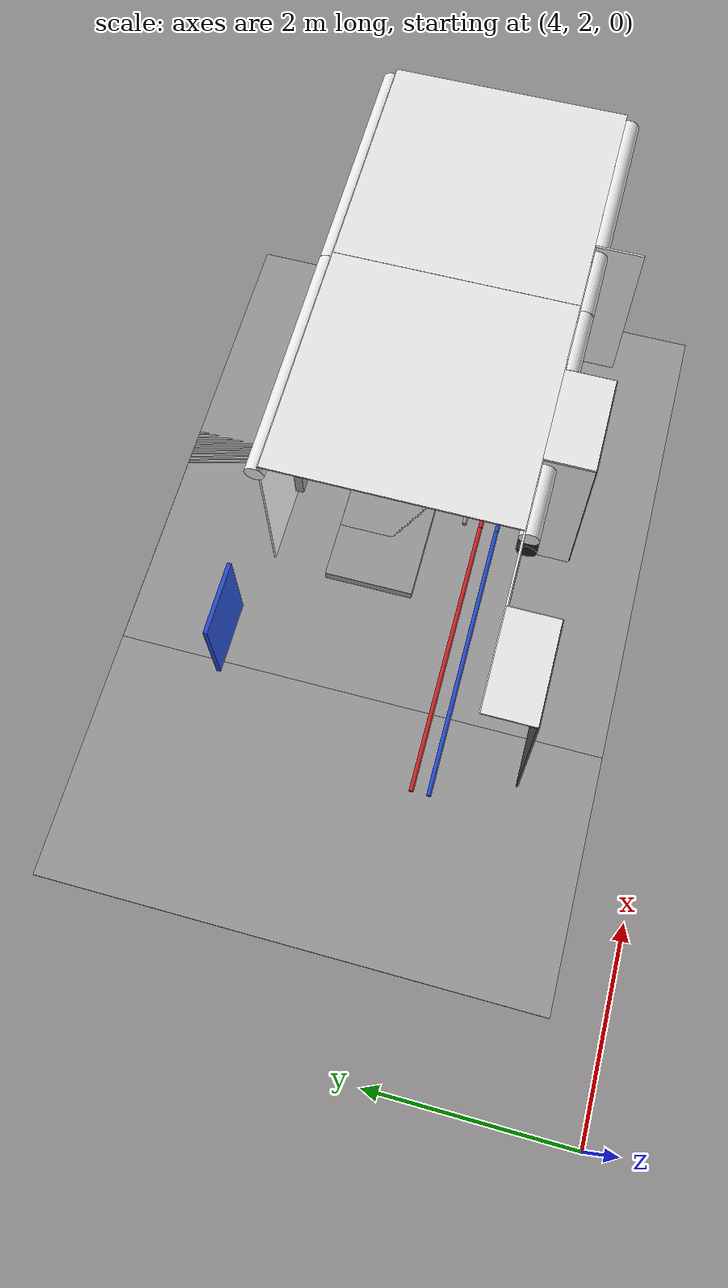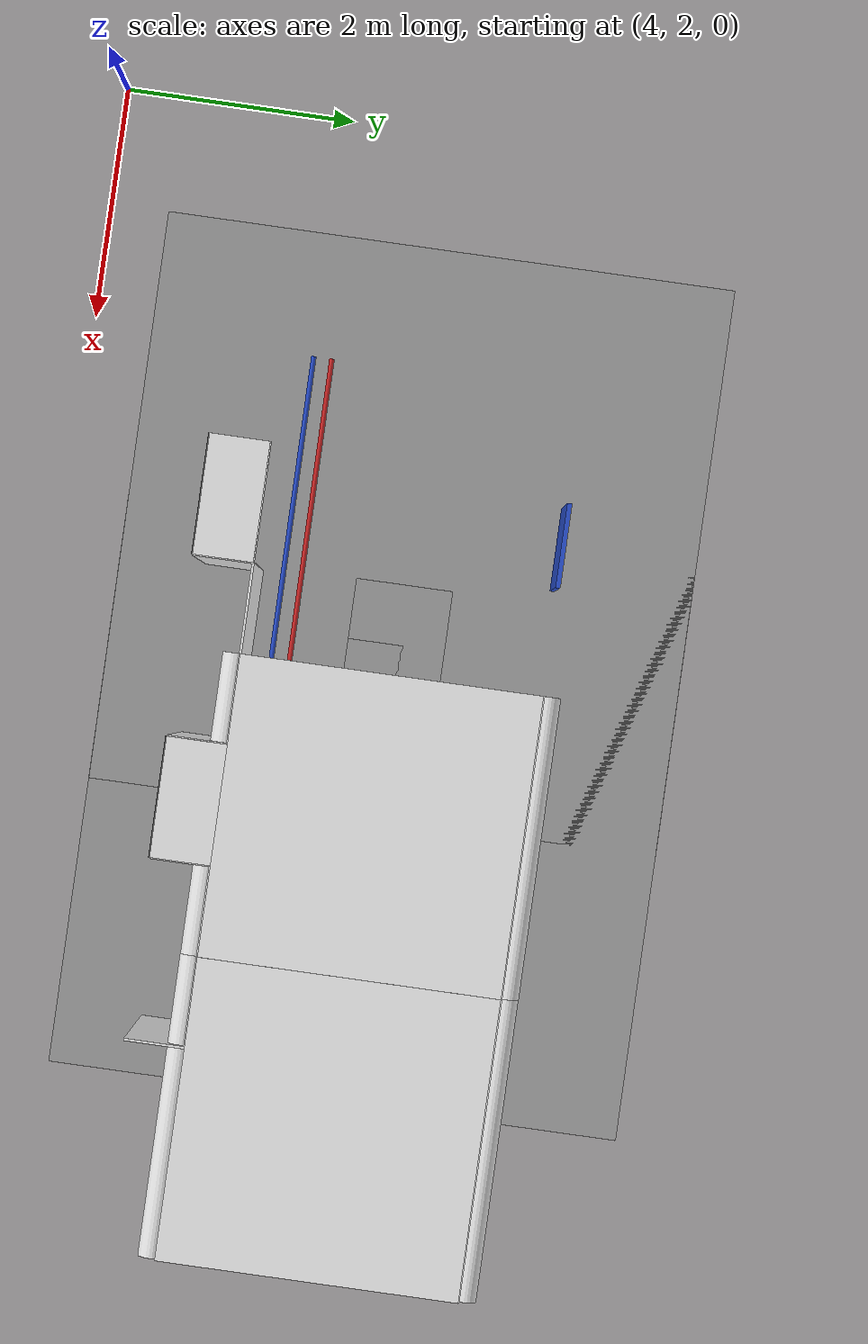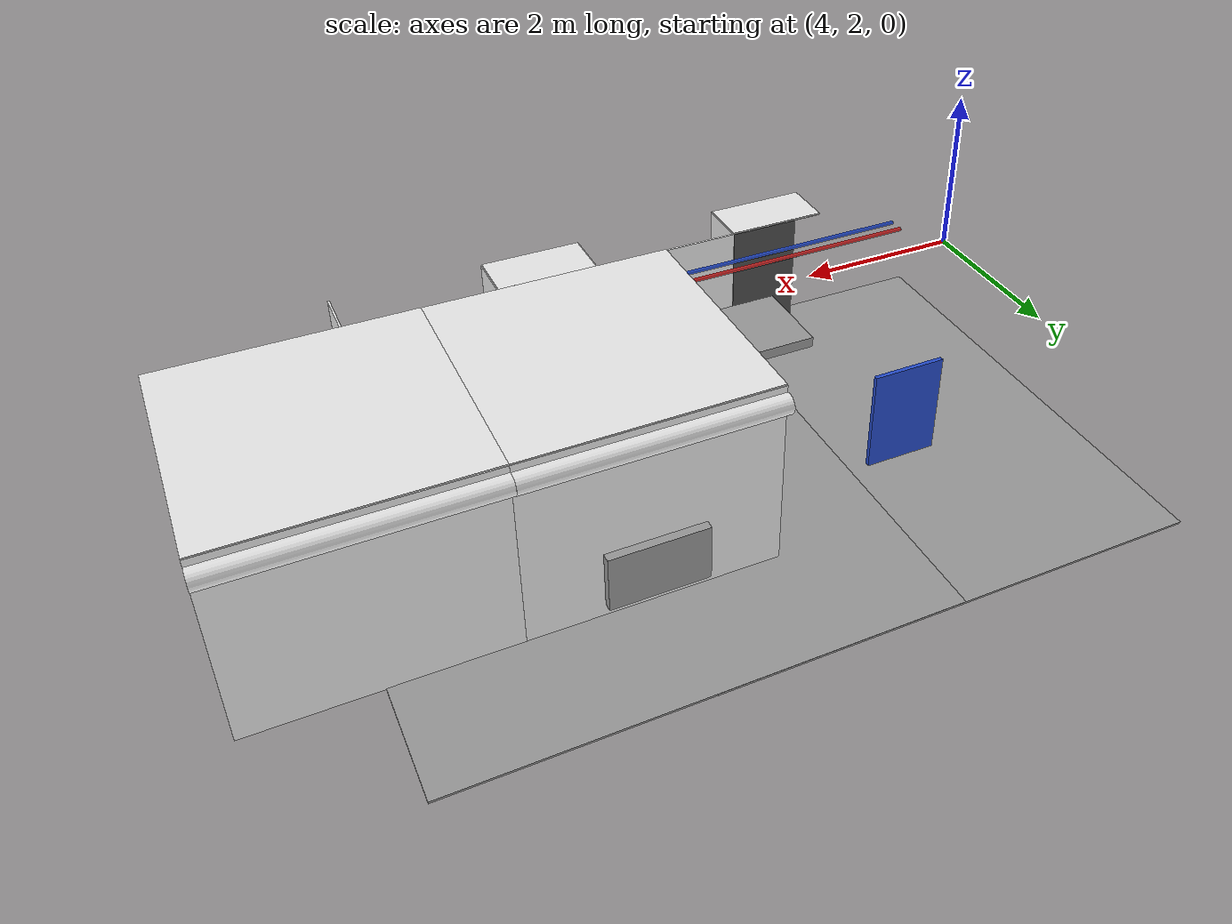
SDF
<sdf version="1.6">
 <world name="default">
  <model name="ceiling_1_3_2_2_1">
   <pose>8.5 5.0 1.7 0.0 0.0 -1.57</pose>
   <link name="link_1">
    <visual name="visual">
     <geometry><box><size>0.8 1 0.1</size></box></geometry>
     <material>
      <script><uri>file://media/materials/scripts/gazebo.material</uri><name>Gazebo/Grey</name></script>
     </material>
    </visual>
    <collision name="collision"><geometry><box><size>0.8 1 0.1</size></box></geometry></collision>
   </link>
   <static>1</static>
  </model>
  <model name="red_pipe_right_3_2_0_1">
   <static>1</static>
   <pose>7.5 5.0 1.84 0.0 0.0 -1.57</pose>
   <link name="link_0">
    <visual name="visual">
     <pose>0.85 0 0 1.57 0 0</pose>
     <geometry><cylinder><radius>0.02</radius><length>2.5</length></cylinder></geometry>
     <material>
      <script><uri>file://media/materials/scripts/gazebo.material</uri><name>Gazebo/Red</name></script>
     </material>
    </visual>
    <collision name="collision">
     <pose>0.85 0 0 1.57 0 0</pose>
     <geometry><cylinder><radius>0.02</radius><length>2.5</length></cylinder></geometry>
    </collision>
   </link>
  </model>
  <model name="blue_pipe_right_3_2_0_1">
   <static>1</static>
   <pose>7.5 5.0 1.84 0.0 0.0 -1.57</pose>
   <link name="link_0">
    <visual name="visual">
     <pose>1 0 0 1.57 0 0</pose>
     <geometry><cylinder><radius>0.02</radius><length>2.5</length></cylinder></geometry>
     <material>
      <script><uri>file://media/materials/scripts/gazebo.material</uri><name>Gazebo/Blue</name></script>
     </material>
    </visual>
    <collision name="collision">
     <pose>1 0 0 1.57 0 0</pose>
     <geometry><cylinder><radius>0.02</radius><length>2.5</length></cylinder></geometry>
    </collision>
   </link>
  </model>
  <model name="panel_3_2_0_1">
   <static>1</static>
   <pose>7.5 6.25 1.3 0.0 0.0 -1.57</pose>
   <link name="link">
    <collision name="collision"><geometry><box><size>0.04 0.7 1</size></box></geometry></collision>
    <visual name="visual">
     <material>
      <script><name>Gazebo/Blue</name><uri>file://media/materials/scripts/gazebo.material</uri></script>
     </material>
     <geometry><box><size>0.04 0.7 1</size></box></geometry>
    </visual>
   </link>
  </model>
  <model name="wall_right_front_left_3_2_0_1">
   <static>1</static>
   <pose>8.375 3.75 1.0 0.0 0.0 0.0</pose>
   <link name="link">
    <collision name="collision"><geometry><box><size>0.75 0.02 2.0</size></box></geometry></collision>
    <visual name="visual">
     <material>
      <script><name>Gazebo/White</name><uri>file://media/materials/scripts/gazebo.material</uri></script>
     </material>
     <geometry><box><size>0.75 0.02 2.0</size></box></geometry>
    </visual>
   </link>
  </model>
  <model name="wall_right_front_up_3_2_0_1">
   <static>1</static>
   <pose>7.5 3.75 2.0 0.0 0.0 0.0</pose>
   <link name="link">
    <collision name="collision"><geometry><box><size>1.0 0.02 0.001</size></box></geometry></collision>
    <visual name="visual">
     <material>
      <script><name>Gazebo/White</name><uri>file://media/materials/scripts/gazebo.material</uri></script>
     </material>
     <geometry><box><size>1.0 0.02 0.001</size></box></geometry>
    </visual>
   </link>
  </model>
  <model name="wall_right_inside_back_3_2_0_1">
   <static>1</static>
   <pose>7.5 3.25 1.0 0.0 0.0 0.0</pose>
   <link name="link">
    <collision name="collision"><geometry><box><size>1 0.02 2</size></box></geometry></collision>
    <visual name="visual">
     <material>
      <script><name>Gazebo/DarkGrey</name><uri>file://media/materials/scripts/gazebo.material</uri></script>
     </material>
     <geometry><box><size>1 0.02 2</size></box></geometry>
    </visual>
   </link>
  </model>
  <model name="wall_right_inside_left_3_2_0_1">
   <static>1</static>
   <pose>8.0 3.5 1.0 0.0 0.0 -1.57</pose>
   <link name="link">
    <collision name="collision"><geometry><box><size>0.5 0.02 2</size></box></geometry></collision>
    <visual name="visual">
     <material>
      <script><name>Gazebo/White</name><uri>file://media/materials/scripts/gazebo.material</uri></script>
     </material>
     <geometry><box><size>0.5 0.02 2</size></box></geometry>
    </visual>
   </link>
  </model>
  <model name="wall_right_inside_top_3_2_0_1">
   <static>1</static>
   <pose>7.5 3.5 2.0 1.57 0.0 0.0</pose>
   <link name="link">
    <collision name="collision"><geometry><box><size>1 0.02 0.5</size></box></geometry></collision>
    <visual name="visual">
     <material>
      <script><name>Gazebo/White</name><uri>file://media/materials/scripts/gazebo.material</uri></script>
     </material>
     <geometry><box><size>1 0.02 0.5</size></box></geometry>
    </visual>
   </link>
  </model>
  <model name="wall_bottom_3_2_0_1">
   <static>1</static>
   <pose>7.5 5.0 0.0 0.0 0.0 -1.57</pose>
   <link name="link">
    <collision name="collision"><geometry><box><size>5.0 5.0 0.02</size></box></geometry></collision>
    <visual name="visual">
     <material>
      <script><name>Gazebo/Grey</name><uri>file://media/materials/scripts/gazebo.material</uri></script>
     </material>
     <geometry><box><size>5.0 5.0 0.02</size></box></geometry>
    </visual>
   </link>
  </model>
  <model name="wall_left_4_2_0_1">
   <static>1</static>
   <pose>10.0 6.25 1.0 0.0 0.0 0.0</pose>
   <link name="link">
    <collision name="collision"><geometry><box><size>2.5 0.02 2.0</size></box></geometry></collision>
    <visual name="visual">
     <material>
      <script><name>Gazebo/White</name><uri>file://media/materials/scripts/gazebo.material</uri></script>
     </material>
     <geometry><box><size>2.5 0.02 2.0</size></box></geometry>
    </visual>
   </link>
  </model>
  <model name="wall_top_4_2_0_1">
   <static>1</static>
   <pose>10.0 5.0 2.0 1.57 0.0 -1.57</pose>
   <link name="link">
    <collision name="collision"><geometry><box><size>2.5 0.02 2.5</size></box></geometry></collision>
    <visual name="visual">
     <material>
      <script><name>Gazebo/White</name><uri>file://media/materials/scripts/gazebo.material</uri></script>
     </material>
     <geometry><box><size>2.5 0.02 2.5</size></box></geometry>
    </visual>
   </link>
  </model>
  <model name="ceiling_1_4_2_0_1">
   <pose>10.0 5.0 1.7 0.0 0.0 -1.57</pose>
   <link name="link_1">
    <visual name="visual">
     <geometry><box><size>0.8 1 0.1</size></box></geometry>
     <material>
      <script><uri>file://media/materials/scripts/gazebo.material</uri><name>Gazebo/Grey</name></script>
     </material>
    </visual>
    <collision name="collision"><geometry><box><size>0.8 1 0.1</size></box></geometry></collision>
   </link>
   <static>1</static>
  </model>
  <model name="ceiling_1_4_2_1_1">
   <pose>9.0 5.0 1.7 0.0 0.0 -1.57</pose>
   <link name="link_1">
    <visual name="visual">
     <geometry><box><size>0.8 1 0.1</size></box></geometry>
     <material>
      <script><uri>file://media/materials/scripts/gazebo.material</uri><name>Gazebo/Grey</name></script>
     </material>
    </visual>
    <collision name="collision"><geometry><box><size>0.8 1 0.1</size></box></geometry></collision>
   </link>
   <static>1</static>
  </model>
  <model name="ceiling_1_4_2_2_1">
   <pose>11.0 5.0 1.7 0.0 0.0 -1.57</pose>
   <link name="link_1">
    <visual name="visual">
     <geometry><box><size>0.8 1 0.1</size></box></geometry>
     <material>
      <script><uri>file://media/materials/scripts/gazebo.material</uri><name>Gazebo/Grey</name></script>
     </material>
    </visual>
    <collision name="collision"><geometry><box><size>0.8 1 0.1</size></box></geometry></collision>
   </link>
   <static>1</static>
  </model>
  <model name="white_pipe_left_4_2_0_1">
   <static>1</static>
   <pose>10.0 5.0 1.84 0.0 0.0 -1.57</pose>
   <link name="link_0">
    <visual name="visual">
     <pose>-1.3 0 0 1.57 0 0</pose>
     <geometry><cylinder><radius>0.1</radius><length>2.5</length></cylinder></geometry>
     <material>
      <script><uri>file://media/materials/scripts/gazebo.material</uri><name>Gazebo/White</name></script>
     </material>
    </visual>
    <collision name="collision">
     <pose>-1.3 0 0 1.57 0 0</pose>
     <geometry><cylinder><radius>0.1</radius><length>2.5</length></cylinder></geometry>
    </collision>
   </link>
  </model>
  <model name="white_pipe_right_4_2_0_1">
   <static>1</static>
   <pose>10.0 5.0 1.84 0.0 0.0 -1.57</pose>
   <link name="link_0">
    <visual name="visual">
     <pose>1.3 0 0 1.57 0 0</pose>
     <geometry><cylinder><radius>0.1</radius><length>2.5</length></cylinder></geometry>
     <material>
      <script><uri>file://media/materials/scripts/gazebo.material</uri><name>Gazebo/White</name></script>
     </material>
    </visual>
    <collision name="collision">
     <pose>1.3 0 0 1.57 0 0</pose>
     <geometry><cylinder><radius>0.1</radius><length>2.5</length></cylinder></geometry>
    </collision>
   </link>
  </model>
  <model name="black_pipe_right_4_2_0_1">
   <static>1</static>
   <pose>10.0 5.0 1.84 0.0 0.0 -1.57</pose>
   <link name="link_0">
    <visual name="visual">
     <pose>1.3 0 -0.25 1.57 0 0</pose>
     <geometry><cylinder><radius>0.1</radius><length>2.5</length></cylinder></geometry>
     <material>
      <script><uri>file://media/materials/scripts/gazebo.material</uri><name>Gazebo/Black</name></script>
     </material>
    </visual>
    <collision name="collision">
     <pose>1.3 0 -0.25 1.57 0 0</pose>
     <geometry><cylinder><radius>0.1</radius><length>2.5</length></cylinder></geometry>
    </collision>
   </link>
  </model>
  <model name="grey_pipe_right_4_2_0_1">
   <static>1</static>
   <pose>10.0 5.0 1.84 0.0 0.0 -1.57</pose>
   <link name="link_0">
    <visual name="visual">
     <pose>0.7 0 0 1.57 0 0</pose>
     <geometry><cylinder><radius>0.02</radius><length>2.5</length></cylinder></geometry>
     <material>
      <script><uri>file://media/materials/scripts/gazebo.material</uri><name>Gazebo/Grey</name></script>
     </material>
    </visual>
    <collision name="collision">
     <pose>0.7 0 0 1.57 0 0</pose>
     <geometry><cylinder><radius>0.02</radius><length>2.5</length></cylinder></geometry>
    </collision>
   </link>
  </model>
  <model name="red_pipe_right_4_2_0_1">
   <static>1</static>
   <pose>10.0 5.0 1.84 0.0 0.0 -1.57</pose>
   <link name="link_0">
    <visual name="visual">
     <pose>0.85 0 0 1.57 0 0</pose>
     <geometry><cylinder><radius>0.02</radius><length>2.5</length></cylinder></geometry>
     <material>
      <script><uri>file://media/materials/scripts/gazebo.material</uri><name>Gazebo/Red</name></script>
     </material>
    </visual>
    <collision name="collision">
     <pose>0.85 0 0 1.57 0 0</pose>
     <geometry><cylinder><radius>0.02</radius><length>2.5</length></cylinder></geometry>
    </collision>
   </link>
  </model>
  <model name="blue_pipe_right_4_2_0_1">
   <static>1</static>
   <pose>10.0 5.0 1.84 0.0 0.0 -1.57</pose>
   <link name="link_0">
    <visual name="visual">
     <pose>1 0 0 1.57 0 0</pose>
     <geometry><cylinder><radius>0.02</radius><length>2.5</length></cylinder></geometry>
     <material>
      <script><uri>file://media/materials/scripts/gazebo.material</uri><name>Gazebo/Blue</name></script>
     </material>
    </visual>
    <collision name="collision">
     <pose>1 0 0 1.57 0 0</pose>
     <geometry><cylinder><radius>0.02</radius><length>2.5</length></cylinder></geometry>
    </collision>
   </link>
  </model>
  <model name="wall_bottom_4_2_0_1">
   <static>1</static>
   <pose>10.0 5.0 0.0 0.0 0.0 -1.57</pose>
   <link name="link">
    <collision name="collision"><geometry><box><size>5.0 5.0 0.02</size></box></geometry></collision>
    <visual name="visual">
     <material>
      <script><name>Gazebo/Grey</name><uri>file://media/materials/scripts/gazebo.material</uri></script>
     </material>
     <geometry><box><size>5.0 5.0 0.02</size></box></geometry>
    </visual>
   </link>
  </model>
  <model name="wall_right_front_left_4_2_0_1">
   <static>1</static>
   <pose>10.875 3.75 1.0 0.0 0.0 0.0</pose>
   <link name="link">
    <collision name="collision"><geometry><box><size>0.75 0.02 2.0</size></box></geometry></collision>
    <visual name="visual">
     <material>
      <script><name>Gazebo/White</name><uri>file://media/materials/scripts/gazebo.material</uri></script>
     </material>
     <geometry><box><size>0.75 0.02 2.0</size></box></geometry>
    </visual>
   </link>
  </model>
  <model name="wall_right_front_right_4_2_0_1">
   <static>1</static>
   <pose>9.125 3.75 1.0 0.0 0.0 0.0</pose>
   <link name="link">
    <collision name="collision"><geometry><box><size>0.75 0.02 2.0</size></box></geometry></collision>
    <visual name="visual">
     <material>
      <script><name>Gazebo/White</name><uri>file://media/materials/scripts/gazebo.material</uri></script>
     </material>
     <geometry><box><size>0.75 0.02 2.0</size></box></geometry>
    </visual>
   </link>
  </model>
  <model name="wall_right_front_up_4_2_0_1">
   <static>1</static>
   <pose>10.0 3.75 2.0 0.0 0.0 0.0</pose>
   <link name="link">
    <collision name="collision"><geometry><box><size>1.0 0.02 0.001</size></box></geometry></collision>
    <visual name="visual">
     <material>
      <script><name>Gazebo/White</name><uri>file://media/materials/scripts/gazebo.material</uri></script>
     </material>
     <geometry><box><size>1.0 0.02 0.001</size></box></geometry>
    </visual>
   </link>
  </model>
  <model name="wall_right_inside_back_4_2_0_1">
   <static>1</static>
   <pose>10.0 3.25 1.0 0.0 0.0 0.0</pose>
   <link name="link">
    <collision name="collision"><geometry><box><size>1 0.02 2</size></box></geometry></collision>
    <visual name="visual">
     <material>
      <script><name>Gazebo/DarkGrey</name><uri>file://media/materials/scripts/gazebo.material</uri></script>
     </material>
     <geometry><box><size>1 0.02 2</size></box></geometry>
    </visual>
   </link>
  </model>
  <model name="wall_right_inside_left_4_2_0_1">
   <static>1</static>
   <pose>10.5 3.5 1.0 0.0 0.0 -1.57</pose>
   <link name="link">
    <collision name="collision"><geometry><box><size>0.5 0.02 2</size></box></geometry></collision>
    <visual name="visual">
     <material>
      <script><name>Gazebo/White</name><uri>file://media/materials/scripts/gazebo.material</uri></script>
     </material>
     <geometry><box><size>0.5 0.02 2</size></box></geometry>
    </visual>
   </link>
  </model>
  <model name="wall_right_inside_right_4_2_0_1">
   <static>1</static>
   <pose>9.5 3.5 1.0 0.0 0.0 -1.57</pose>
   <link name="link">
    <collision name="collision"><geometry><box><size>0.5 0.02 2</size></box></geometry></collision>
    <visual name="visual">
     <material>
      <script><name>Gazebo/White</name><uri>file://media/materials/scripts/gazebo.material</uri></script>
     </material>
     <geometry><box><size>0.5 0.02 2</size></box></geometry>
    </visual>
   </link>
  </model>
  <model name="wall_right_inside_top_4_2_0_1">
   <static>1</static>
   <pose>10.0 3.5 2.0 1.57 0.0 0.0</pose>
   <link name="link">
    <collision name="collision"><geometry><box><size>1 0.02 0.5</size></box></geometry></collision>
    <visual name="visual">
     <material>
      <script><name>Gazebo/White</name><uri>file://media/materials/scripts/gazebo.material</uri></script>
     </material>
     <geometry><box><size>1 0.02 0.5</size></box></geometry>
    </visual>
   </link>
  </model>
  <model name="panel_4_2_0_1">
   <static>1</static>
   <pose>10.0 6.25 0.44 0.0 0.0 -1.57</pose>
   <link name="link">
    <collision name="collision"><geometry><box><size>0.2 1 0.6</size></box></geometry></collision>
    <visual name="visual">
     <material>
      <script><name>Gazebo/Grey</name><uri>file://media/materials/scripts/gazebo.material</uri></script>
     </material>
     <geometry><box><size>0.2 1 0.6</size></box></geometry>
    </visual>
   </link>
  </model>
  <model name="wall_left_5_2_0_1">
   <static>1</static>
   <pose>12.5 6.25 1.0 0.0 0.0 0.0</pose>
   <link name="link">
    <collision name="collision"><geometry><box><size>2.5 0.02 2.0</size></box></geometry></collision>
    <visual name="visual">
     <material>
      <script><name>Gazebo/White</name><uri>file://media/materials/scripts/gazebo.material</uri></script>
     </material>
     <geometry><box><size>2.5 0.02 2.0</size></box></geometry>
    </visual>
   </link>
  </model>
  <model name="wall_top_5_2_0_1">
   <static>1</static>
   <pose>12.5 5.0 2.0 1.57 0.0 -1.57</pose>
   <link name="link">
    <collision name="collision"><geometry><box><size>2.5 0.02 2.5</size></box></geometry></collision>
    <visual name="visual">
     <material>
      <script><name>Gazebo/White</name><uri>file://media/materials/scripts/gazebo.material</uri></script>
     </material>
     <geometry><box><size>2.5 0.02 2.5</size></box></geometry>
    </visual>
   </link>
  </model>
  <model name="ceiling_1_5_2_0_1">
   <pose>12.5 5.0 1.7 0.0 0.0 -1.57</pose>
   <link name="link_1">
    <visual name="visual">
     <geometry><box><size>0.8 1 0.1</size></box></geometry>
     <material>
      <script><uri>file://media/materials/scripts/gazebo.material</uri><name>Gazebo/Grey</name></script>
     </material>
    </visual>
    <collision name="collision"><geometry><box><size>0.8 1 0.1</size></box></geometry></collision>
   </link>
   <static>1</static>
  </model>
  <model name="ceiling_1_5_2_1_1">
   <pose>11.5 5.0 1.7 0.0 0.0 -1.57</pose>
   <link name="link_1">
    <visual name="visual">
     <geometry><box><size>0.8 1 0.1</size></box></geometry>
     <material>
      <script><uri>file://media/materials/scripts/gazebo.material</uri><name>Gazebo/Grey</name></script>
     </material>
    </visual>
    <collision name="collision"><geometry><box><size>0.8 1 0.1</size></box></geometry></collision>
   </link>
   <static>1</static>
  </model>
  <model name="white_pipe_left_5_2_0_1">
   <static>1</static>
   <pose>12.5 5.0 1.84 0.0 0.0 -1.57</pose>
   <link name="link_0">
    <visual name="visual">
     <pose>-1.3 0 0 1.57 0 0</pose>
     <geometry><cylinder><radius>0.1</radius><length>2.5</length></cylinder></geometry>
     <material>
      <script><uri>file://media/materials/scripts/gazebo.material</uri><name>Gazebo/White</name></script>
     </material>
    </visual>
    <collision name="collision">
     <pose>-1.3 0 0 1.57 0 0</pose>
     <geometry><cylinder><radius>0.1</radius><length>2.5</length></cylinder></geometry>
    </collision>
   </link>
  </model>
  <model name="white_pipe_right_5_2_0_1">
   <static>1</static>
   <pose>12.5 5.0 1.84 0.0 0.0 -1.57</pose>
   <link name="link_0">
    <visual name="visual">
     <pose>1.3 0 0 1.57 0 0</pose>
     <geometry><cylinder><radius>0.1</radius><length>2.5</length></cylinder></geometry>
     <material>
      <script><uri>file://media/materials/scripts/gazebo.material</uri><name>Gazebo/White</name></script>
     </material>
    </visual>
    <collision name="collision">
     <pose>1.3 0 0 1.57 0 0</pose>
     <geometry><cylinder><radius>0.1</radius><length>2.5</length></cylinder></geometry>
    </collision>
   </link>
  </model>
  <model name="black_pipe_right_5_2_0_1">
   <static>1</static>
   <pose>12.5 5.0 1.84 0.0 0.0 -1.57</pose>
   <link name="link_0">
    <visual name="visual">
     <pose>1.3 0 -0.25 1.57 0 0</pose>
     <geometry><cylinder><radius>0.1</radius><length>2.5</length></cylinder></geometry>
     <material>
      <script><uri>file://media/materials/scripts/gazebo.material</uri><name>Gazebo/Black</name></script>
     </material>
    </visual>
    <collision name="collision">
     <pose>1.3 0 -0.25 1.57 0 0</pose>
     <geometry><cylinder><radius>0.1</radius><length>2.5</length></cylinder></geometry>
    </collision>
   </link>
  </model>
  <model name="grey_pipe_right_5_2_0_1">
   <static>1</static>
   <pose>12.5 5.0 1.84 0.0 0.0 -1.57</pose>
   <link name="link_0">
    <visual name="visual">
     <pose>0.7 0 0 1.57 0 0</pose>
     <geometry><cylinder><radius>0.02</radius><length>2.5</length></cylinder></geometry>
     <material>
      <script><uri>file://media/materials/scripts/gazebo.material</uri><name>Gazebo/Grey</name></script>
     </material>
    </visual>
    <collision name="collision">
     <pose>0.7 0 0 1.57 0 0</pose>
     <geometry><cylinder><radius>0.02</radius><length>2.5</length></cylinder></geometry>
    </collision>
   </link>
  </model>
  <model name="red_pipe_right_5_2_0_1">
   <static>1</static>
   <pose>12.5 5.0 1.84 0.0 0.0 -1.57</pose>
   <link name="link_0">
    <visual name="visual">
     <pose>0.85 0 0 1.57 0 0</pose>
     <geometry><cylinder><radius>0.02</radius><length>2.5</length></cylinder></geometry>
     <material>
      <script><uri>file://media/materials/scripts/gazebo.material</uri><name>Gazebo/Red</name></script>
     </material>
    </visual>
    <collision name="collision">
     <pose>0.85 0 0 1.57 0 0</pose>
     <geometry><cylinder><radius>0.02</radius><length>2.5</length></cylinder></geometry>
    </collision>
   </link>
  </model>
  <model name="wall_right_front_right_5_2_0_1">
   <static>1</static>
   <pose>11.625 3.75 1.0 0.0 0.0 0.0</pose>
   <link name="link">
    <collision name="collision"><geometry><box><size>0.75 0.02 2.0</size></box></geometry></collision>
    <visual name="visual">
     <material>
      <script><name>Gazebo/White</name><uri>file://media/materials/scripts/gazebo.material</uri></script>
     </material>
     <geometry><box><size>0.75 0.02 2.0</size></box></geometry>
    </visual>
   </link>
  </model>
  <model name="wall_right_inside_right_5_2_0_1">
   <static>1</static>
   <pose>12.0 3.5 1.0 0.0 0.0 -1.57</pose>
   <link name="link">
    <collision name="collision"><geometry><box><size>0.5 0.02 2</size></box></geometry></collision>
    <visual name="visual">
     <material>
      <script><name>Gazebo/White</name><uri>file://media/materials/scripts/gazebo.material</uri></script>
     </material>
     <geometry><box><size>0.5 0.02 2</size></box></geometry>
    </visual>
   </link>
  </model>
 </world>
</sdf>
